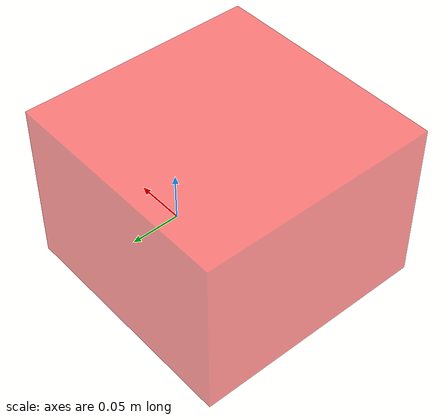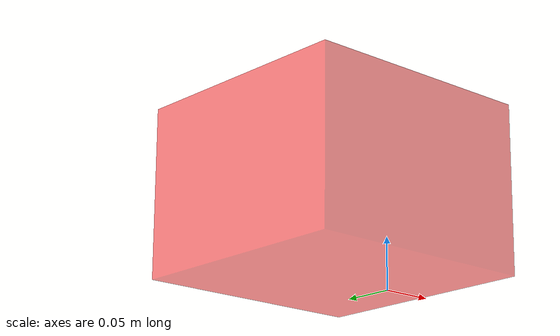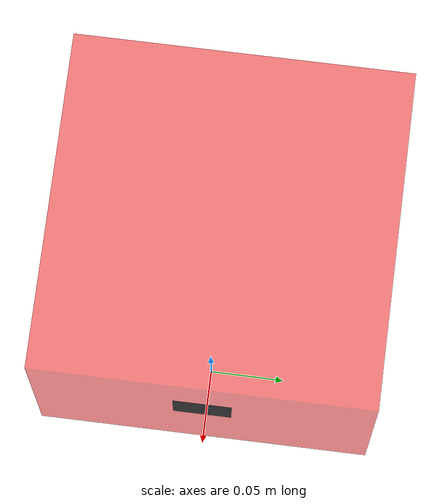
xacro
<?xml version="1.0"?>
<robot xmlns:xacro="http://www.ros.org/wiki/xacro" name="minibot_middle_02">
  <xacro:property name="body_d" value="0.225" />
  <xacro:property name="body_w" value="0.225" />
  <xacro:property name="body_h" value="0.1593" />
  <xacro:property name="body_offset_x" value="${0.045-0.225/2}" />
  <xacro:property name="body_offset_z" value="${body_h/2}" />

  <link name="base_link">
    <collision>
      <origin rpy="0 0 0" xyz="${body_offset_x} 0 ${body_offset_z}"/>
      <geometry>
        <box size="${body_d} ${body_w} ${body_h}"/>
      </geometry>
    </collision>
    <visual>
      <origin rpy="0 0 0" xyz="${body_offset_x} 0 ${body_offset_z}"/>
      <geometry>
        <box size="${body_d} ${body_w} ${body_h}"/>
      </geometry>
      <material name="vehicle_mat">
        <color rgba="1.0 0.0 0.0 0.5"/>
      </material>
    </visual>
  </link>

  <xacro:property name="laser_d" value="0.0386" />
  <xacro:property name="laser_w" value="0.0386" />
  <xacro:property name="laser_h" value="0.0339" />
  <xacro:property name="laser_x" value="0.0257" />
  <xacro:property name="laser_z" value="0.0946" />

  <joint name="laser_joint" type="fixed">
    <origin xyz="${laser_x} 0 ${laser_z}" rpy="0 0 0"/>
    <parent link="base_link"/>
    <child link="base_laser_link"/>
  </joint>

  <link name="base_laser_link">
    <collision>
      <origin rpy="0 0 0" xyz="0 0 0"/>
      <geometry>
        <box size="${laser_d} ${laser_w} ${laser_h}"/>
      </geometry>
    </collision>
    <visual>
      <origin rpy="0 0 0" xyz="0 0 0"/>
      <geometry>
        <box size="${laser_d} ${laser_w} ${laser_h}"/>
      </geometry>
      <material name="laser_mat">
        <color rgba="0.0 0.0 0.0 0.8"/>
      </material>
    </visual>
  </link>
</robot>
